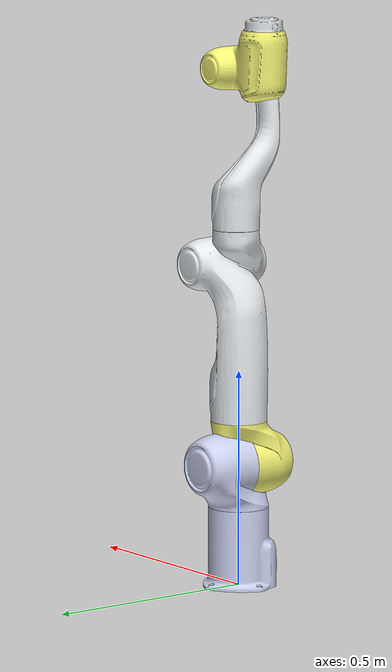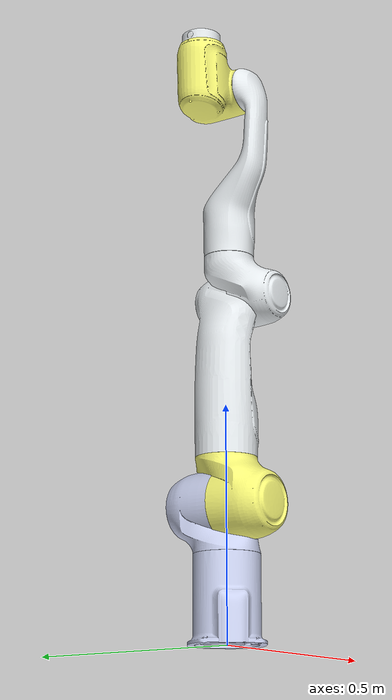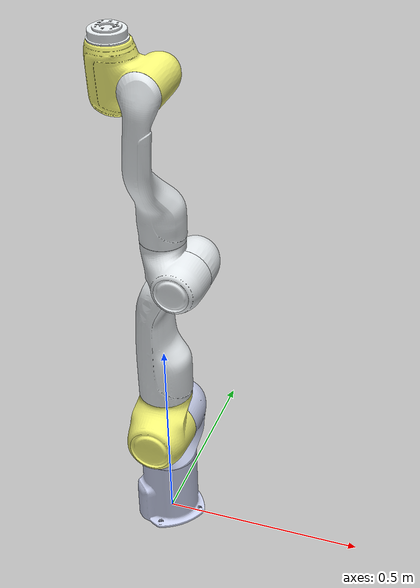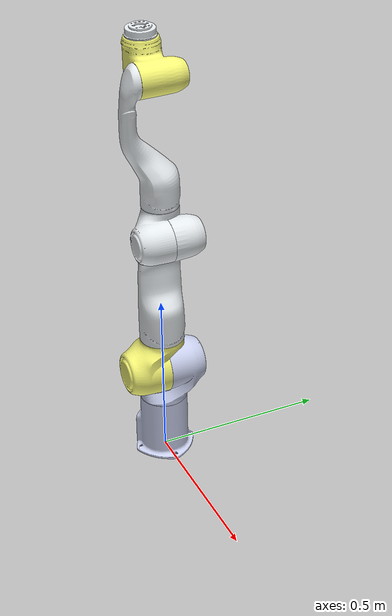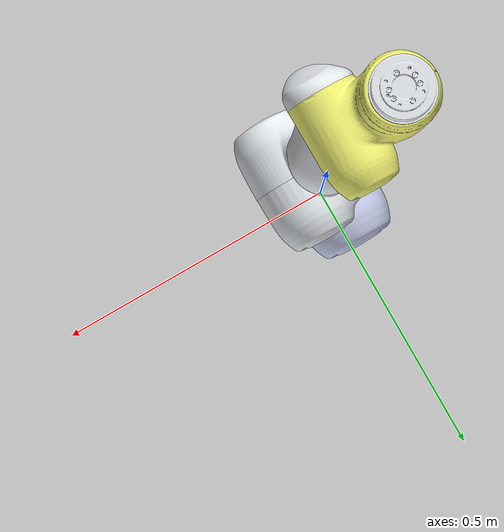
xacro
<?xml version="1.0"?>
<robot xmlns:xacro="http://www.ros.org/wiki/xacro" name="diana_v2">
    <xacro:arg name="initial_positions_file" default="initial_positions.yaml" />

    <!-- Import diana_v2 urdf file -->
    <xacro:include filename="$(find diana7_description)/urdf/diana_v2.xacro" />

    <!-- Import control_xacro -->
    <xacro:include filename="diana_v2.ros2_control.xacro" />

    <xacro:diana_v2_ros2_control name="FakeSystem" initial_positions_file="$(arg initial_positions_file)"/>

</robot>

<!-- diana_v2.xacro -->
<robot xmlns:xacro="http://wiki.ros.org/xacro"  name="diana_v2">

  <link name="world" />

  <joint name="world_joint" type="fixed" >
    <parent link="world"/>
    <child link="base"/>
    <origin xyz="0 0 0" rpy="0 0 0"/>
  </joint>

  <link
    name="base">
    <inertial>
      <origin
        xyz="0.00153097191906452 0.00152031034664837 0.0524230280849149"
        rpy="0 0 0" />
      <mass
        value="1.33110743457779" />
      <inertia
        ixx="0.00695879790529406"
        ixy="9.99328685258342E-05"
        ixz="7.99577031212481E-05"
        iyy="0.00695365531716522"
        iyz="7.90796997368543E-05"
        izz="0.00729823323321907" />
    </inertial>
    <visual>
      <origin
        xyz="0 0 0"
        rpy="0 0 0" />
      <geometry>
        <mesh
          filename="package://diana7_description/meshes/visual/obj/base.obj" />
      </geometry>
      <material
        name="">
        <color
          rgba="0.796078431372549 0.823529411764706 0.937254901960784 1" />
      </material>
    </visual>
    <collision>
      <origin
        xyz="0 0 0"
        rpy="0 0 0" />
      <geometry>
        <mesh
          filename="package://diana7_description/meshes/visual/obj/base.obj" />
      </geometry>
    </collision>
  </link>
  <link
    name="link_1">
    <inertial>
      <origin
        xyz="5.5234067920554E-05 0.0254878204920178 -0.0355441421264809"
        rpy="0 0 0" />
      <mass
        value="1.09025546409174" />
      <inertia
        ixx="0.00585031196428369"
        ixy="1.4630349447555E-07"
        ixz="1.35351687162397E-06"
        iyy="0.00645496952227061"
        iyz="-0.00104800484741808"
        izz="0.00459531291521244" />
    </inertial>
    <visual>
      <origin
        xyz="0 0 0"
        rpy="0 0 0" />
      <geometry>
        <mesh
          filename="package://diana7_description/meshes/visual/obj/link_1.obj" />
      </geometry>
      <material
        name="">
        <color
          rgba="0.796078431372549 0.823529411764706 0.937254901960784 1" />
      </material>
    </visual>
    <collision>
      <origin
        xyz="0 0 0"
        rpy="0 0 0" />
      <geometry>
        <mesh
          filename="package://diana7_description/meshes/visual/obj/link_1.obj" />
      </geometry>
    </collision>
  </link>
  <joint
    name="joint_1"
    type="revolute">
    <origin
      xyz="0 0 0.2856"
      rpy="0 0 0" />
    <parent
      link="base" />
    <child
      link="link_1" />
    <axis
      xyz="0 0 -1" />
    <limit
      lower="-3.12"
      upper="3.12"
      effort="235"
      velocity="2.618" />
  </joint>
  <link
    name="link_2">
    <inertial>
      <origin
        xyz="-3.62724763868157E-06 -0.0292741005087307 -0.041280769252073"
        rpy="0 0 0" />
      <mass
        value="1.09515454908799" />
      <inertia
        ixx="0.00575817488413533"
        ixy="4.92454490330888E-07"
        ixz="-5.75758988171004E-07"
        iyy="0.00452592941277235"
        iyz="0.00135206824645357"
        izz="0.0058904584276842" />
    </inertial>
    <visual>
      <origin
        xyz="0 0 0"
        rpy="0 0 0" />
      <geometry>
        <mesh
          filename="package://diana7_description/meshes/visual/obj/link_2.obj" />
      </geometry>
      <material
        name="">
        <color
          rgba="0.980392156862745 0.980392156862745 0.470588235294118 1" />
      </material>
    </visual>
    <collision>
      <origin
        xyz="0 0 0"
        rpy="0 0 0" />
      <geometry>
        <mesh
          filename="package://diana7_description/meshes/visual/obj/link_2.obj" />
      </geometry>
    </collision>
  </link>
  <joint
    name="joint_2"
    type="revolute">
    <origin
      xyz="0 0 0"
      rpy="-1.5707963267949 0 0" />
    <parent
      link="link_1" />
    <child
      link="link_2" />
    <axis
      xyz="0 0 1" />
    <limit
      lower="-1.57"
      upper="1.57"
      effort="235"
      velocity="2.618" />
  </joint>
  <link
    name="link_3">
    <inertial>
      <origin
        xyz="0.0114318213510691 0.0101707598694861 -0.15131695375217"
        rpy="0 0 0" />
      <mass
        value="2.01686690128149" />
      <inertia
        ixx="0.0362470020041464"
        ixy="-0.00099203786071914"
        ixz="-0.00494440140493448"
        iyy="0.0374857206758098"
        iyz="-0.00313859974095155"
        izz="0.00905850119342719" />
    </inertial>
    <visual>
      <origin
        xyz="0 0 0"
        rpy="0 0 0" />
      <geometry>
        <mesh
          filename="package://diana7_description/meshes/visual/obj/link_3.obj" />
      </geometry>
      <material
        name="">
        <color
          rgba="0.898039215686275 0.917647058823529 0.929411764705882 1" />
      </material>
    </visual>
    <collision>
      <origin
        xyz="0 0 0"
        rpy="0 0 0" />
      <geometry>
        <mesh
          filename="package://diana7_description/meshes/visual/obj/link_3.obj" />
      </geometry>
    </collision>
  </link>
  <joint
    name="joint_3"
    type="revolute">
    <origin
      xyz="0 -0.4586 0"
      rpy="1.5707963267949 0 0" />
    <parent
      link="link_2" />
    <child
      link="link_3" />
    <axis
      xyz="0 0 -1" />
    <limit
      lower="-3.12"
      upper="3.12"
      effort="111"
      velocity="3.1416" />
  </joint>
  <link
    name="link_4">
    <inertial>
      <origin
        xyz="-0.0240716370537192 -0.0235631728011761 -0.0366858174253844"
        rpy="0 0 0" />
      <mass
        value="0.849743349506889" />
      <inertia
        ixx="0.00313444335639628"
        ixy="-0.000681243351041131"
        ixz="0.000725380047812207"
        iyy="0.00333717642442852"
        iyz="0.000771057559109157"
        izz="0.0034847726349841" />
    </inertial>
    <visual>
      <origin
        xyz="0 0 0"
        rpy="0 0 0" />
      <geometry>
        <mesh
          filename="package://diana7_description/meshes/visual/obj/link_4.obj" />
      </geometry>
      <material
        name="">
        <color
          rgba="0.898039215686275 0.917647058823529 0.929411764705882 1" />
      </material>
    </visual>
    <collision>
      <origin
        xyz="0 0 0"
        rpy="0 0 0" />
      <geometry>
        <mesh
          filename="package://diana7_description/meshes/visual/obj/link_4.obj" />
      </geometry>
    </collision>
  </link>
  <joint
    name="joint_4"
    type="revolute">
    <origin
      xyz="0.065 0 0"
      rpy="-1.5707963267949 0 0" />
    <parent
      link="link_3" />
    <child
      link="link_4" />
    <axis
      xyz="0 0 1" />
    <limit
      lower="0"
      upper="3.05"
      effort="111"
      velocity="3.1416" />
  </joint>
  <link
    name="link_5">
    <inertial>
      <origin
        xyz="-0.00867148011164554 -0.0383499684802812 -0.210246042699824"
        rpy="0 0 0" />
      <mass
        value="1.20580396965245" />
      <inertia
        ixx="0.0218436427570802"
        ixy="-0.000309747330693722"
        ixz="0.00089039094846826"
        iyy="0.0205896836785318"
        iyz="0.00493573923914426"
        izz="0.00372270106038425" />
    </inertial>
    <visual>
      <origin
        xyz="0 0 0"
        rpy="0 0 0" />
      <geometry>
        <mesh
          filename="package://diana7_description/meshes/visual/obj/link_5.obj" />
      </geometry>
      <material
        name="">
        <color
          rgba="0.898039215686275 0.917647058823529 0.929411764705882 1" />
      </material>
    </visual>
    <collision>
      <origin
        xyz="0 0 0"
        rpy="0 0 0" />
      <geometry>
        <mesh
          filename="package://diana7_description/meshes/visual/obj/link_5.obj" />
      </geometry>
    </collision>
  </link>
  <joint
    name="joint_5"
    type="revolute">
    <origin
      xyz="-0.0528 -0.47702 0"
      rpy="1.5707963267949 0 0" />
    <parent
      link="link_4" />
    <child
      link="link_5" />
    <axis
      xyz="0 0 -1" />
    <limit
      lower="-3.12"
      upper="3.12"
      effort="54"
      velocity="2.618" />
  </joint>
  <link
    name="link_6">
    <inertial>
      <origin
        xyz="0.045897226241036 -0.00848579821002571 0.0078257811617596"
        rpy="0 0 0" />
      <mass
        value="0.847157564562275" />
      <inertia
        ixx="0.00286926864109097"
        ixy="-0.000341664135091818"
        ixz="-0.000318082297486923"
        iyy="0.0043294660443987"
        iyz="-5.82962380662208E-05"
        izz="0.00437292566725527" />
    </inertial>
    <visual>
      <origin
        xyz="0 0 0"
        rpy="0 0 3.14159265359" />
      <geometry>
        <mesh
          filename="package://diana7_description/meshes/visual/obj/link_6.obj" />
      </geometry>
      <material
        name="">
        <color
          rgba="0.980392156862745 0.980392156862745 0.470588235294118 1" />
      </material>
    </visual>
    <collision>
      <origin
        xyz="0 0 0"
        rpy="0 0 3.14159265359" />
      <geometry>
        <mesh
          filename="package://diana7_description/meshes/visual/obj/link_6.obj" />
      </geometry>
    </collision>
  </link>
  <joint
    name="joint_6"
    type="revolute">
    <origin
      xyz="-0.0122 0 -0.021619"
      rpy="-1.5707963267949 -3.14159265359 0" />
    <parent
      link="link_5" />
    <child
      link="link_6" />
    <axis
      xyz="0 0 -1" />
    <limit
      lower="-3.12"
      upper="3.12"
      effort="54"
      velocity="2.618" />
  </joint>
  <link
    name="link_7">
    <inertial>
      <origin
        xyz="0.00117005127509708 5.03191940906655E-06 0.0151381784822231"
        rpy="0 0 0" />
      <mass
        value="0.233956150459573" />
      <inertia
        ixx="0.000142027360977168"
        ixy="1.76426389345981E-08"
        ixz="2.14635741626268E-07"
        iyy="0.000134421724783865"
        iyz="-1.29988689037464E-09"
        izz="0.000240242798572463" />
    </inertial>
    <visual>
      <origin
        xyz="0 0 0"
        rpy="0 0 0" />
      <geometry>
        <mesh
          filename="package://diana7_description/meshes/visual/obj/link_7.obj" />
      </geometry>
      <material
        name="">
        <color
          rgba="0.898039215686275 0.917647058823529 0.929411764705882 1" />
      </material>
    </visual>
    <collision>
      <origin
        xyz="0 0 0"
        rpy="0 0 0" />
      <geometry>
        <mesh
          filename="package://diana7_description/meshes/visual/obj/link_7.obj" />
      </geometry>
    </collision>
  </link>
  <joint
    name="joint_7"
    type="revolute">
    <origin
      xyz="0.087 0.1169 0"
      rpy="1.570796 0 0" />
    <parent
      link="link_6" />
    <child
      link="link_7" />
    <axis
      xyz="0 0 1" />
    <limit
      lower="-3.12"
      upper="3.12"
      effort="54"
      velocity="3.1416" />
  </joint>
</robot>
